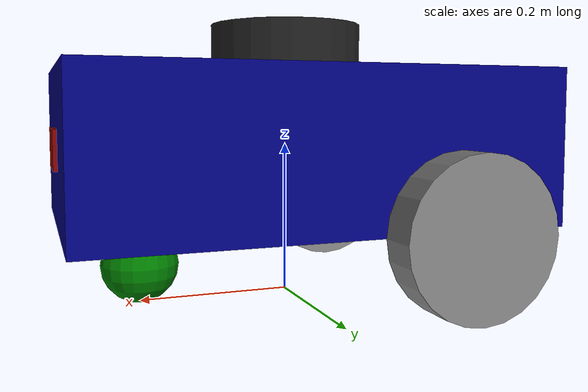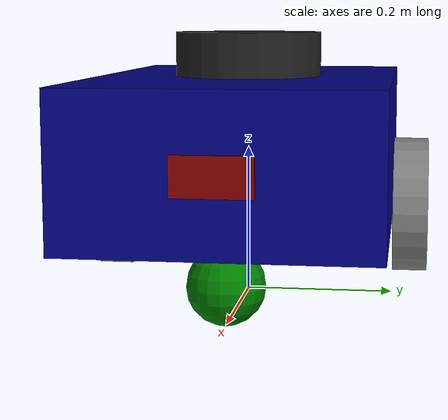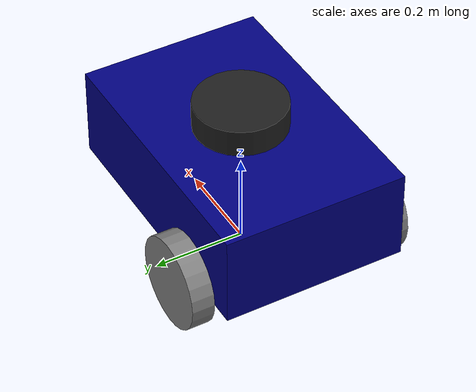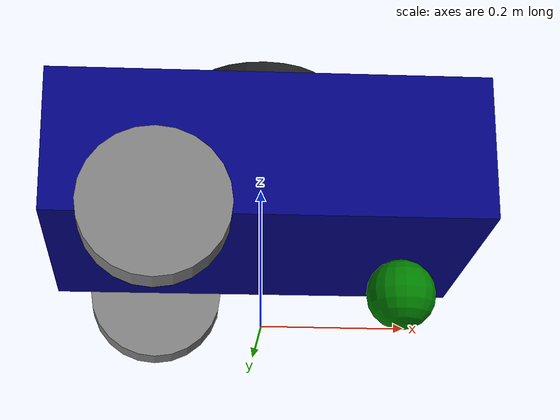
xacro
<?xml version="1.0"?>

<robot name="my_robot" xmlns:xacro="hettps://www.ros.org/wiki/xacro">

    <!-- Importar Cores (propriedades comuns) -->
    <xacro:include filename="$(find my_robot_description)/urdf/cm_properties.xacro" />

    <!-- Importar links e juntas -->
    <xacro:include filename="$(find my_robot_description)/urdf/robot_base.xacro" />
    <xacro:include filename="$(find my_robot_description)/urdf/lidar.xacro"/>
    <xacro:include filename="$(find my_robot_description)/urdf/camera.xacro"/>

    <!-- Importar o gazebo-->
    <xacro:include filename="$(find my_robot_description)/urdf/robot_base_gazebo.xacro" />

</robot>

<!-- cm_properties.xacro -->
<robot xmlns:xacro="http://www.ros.org/wiki/xacro" >

    <!-- Cores -->
    <material name="green">
        <color rgba="0.0 0.5 0.0 1"/>
    </material>
    <material name="blue">
        <color rgba="0.0 0.0 0.5 1"/>
    </material>
    <material name="red">
        <color rgba="0.5 0.0 0.0 1"/>
    </material>
    <material name="gray">
        <color rgba="0.5 0.5 0.5 1"/>
    </material>

    <xacro:macro name="box_inertia" params="m l w h o_xyz o_rpy" >
        <inertial>
            <origin xyz="${o_xyz}" rpy="${o_rpy}" />
            <mass value="${m}" />
            <inertia ixx="${(m/12) * (h*h + l*l)}" ixy="0" ixz="0"
                     iyy="${(m/12) * (w*w + l*l)}" iyz="0"
                     izz="${(m/12) * (h*h + w*w)}" />
        </inertial>
    </xacro:macro>

    <xacro:macro name="cylinder_inertia" params="m r l o_xyz o_rpy">
        <inertial>
            <mass value="${m}" />
            <origin xyz="${o_xyz}" rpy="${o_rpy}" />
            <inertia ixx="${(m/12) * (3*r*r + l*l)}" ixy="0" ixz="0"
                     iyy="${(m/12) * (3*r*r + l*l)}" iyz="0"
                     izz="${(m/2) * (r*r)}" />
        </inertial>
    </xacro:macro>

    <xacro:macro name="sphere_inertia" params="m r o_xyz o_rpy">
        <mass value="${m}" />
        <origin xyz="${o_xyz}" rpy="${o_rpy}" />
        <inertia ixx="${(2/5) * m*r*r}" ixy="0" ixz="0"
                     iyy="${(2/5) * m*r*r}" iyz="0"
                     izz="${(2/5) * m*r*r}" />
    </xacro:macro>

</robot>

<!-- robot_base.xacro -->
<robot xmlns:xacro="http://www.ros.org/wiki/xacro" >
    <!--  Variáveis  -->
    <xacro:property name="base_length" value="0.6" />
    <xacro:property name="base_width" value="0.4" />
    <xacro:property name="base_height" value="0.2" />
    <xacro:property name="wheel_radius" value="0.1" />
    <xacro:property name="wheel_length" value="0.05" />

    <link name="base_footprint"/>

    <link name="base_link">
        <visual>
            <geometry>
                <box size="${base_length} ${base_width} ${base_height}"/>
            </geometry>
            <origin xyz="0 0 ${base_height / 2.0}" rpy="0 0 0"/>
            <material name="blue"/>
        </visual>
        <collision>
            <geometry>
                <box size="${base_length} ${base_width} ${base_height}"/>
            </geometry>
            <origin xyz="0 0 ${base_height / 2.0}" rpy="0 0 0"/>
        </collision>
        <xacro:box_inertia m="5.0" l="${2*base_length}" w="${2*base_width}" h="${2*base_height}"
                           o_xyz="0 0 ${base_height / 2.0}" o_rpy="0 0 0" />

    </link>

    <joint name="base_joint" type="fixed">
        <parent link="base_footprint"/>
        <child link="base_link"/>
        <origin xyz="0 0 ${wheel_radius}"/>
    </joint>

    <xacro:macro name="wheel_link" params="prefix">
        <link name="${prefix}_wheel_link">
            <visual>
                <geometry>
                    <cylinder radius="${wheel_radius}" length="${wheel_length}"/>
                </geometry>
                <origin xyz="0.0 0.0 0.0" rpy="${pi / 2.0} 0.0 0.0"/>
                <material name="gray"/>
            </visual>
            <collision>
                <geometry>
                    <sphere radius="${wheel_radius}" />
                </geometry>
                <origin xyz="0.0 0.0 0.0" rpy="${pi / 2.0} 0.0 0.0"/>
            </collision>
            <xacro:cylinder_inertia m="1.0" r="${2*wheel_radius}" l="${2*wheel_length}" o_xyz="0.0 0.0 0.0" o_rpy="${pi / 2.0} 0.0 0.0" />
        </link>
    </xacro:macro>

    <xacro:wheel_link prefix="left" />

    <joint name="base_left_wheel_joint" type="continuous">
        <parent link="base_link"/>
        <child link="left_wheel_link"/>
        <origin xyz="${-base_length / 4.0} ${(base_width + wheel_length) / 2.0} 0.0" rpy="0 0 0"/>
        <axis xyz="0 1 0"/>
    </joint>

    <xacro:wheel_link prefix="right" />

    <joint name="base_right_wheel_joint" type="continuous">
        <parent link="base_link"/>
        <child link="right_wheel_link"/>
        <origin xyz="${-base_length / 4.0} ${- (base_width + wheel_length) / 2.0} 0" rpy="0 0 0"/>
        <axis xyz="0 1 0"/>
    </joint>

    <link name="caster_wheel_link">
        <visual>
            <geometry>
                <sphere radius="${wheel_radius / 2.0}"/>
            </geometry>
            <origin xyz="0.0 0.0 0.0" rpy="0.0 0.0 0.0"/>
            <material name="green"/>
        </visual>
        <collision>
            <geometry>
                <sphere radius="${wheel_radius / 2.0}"/>
            </geometry>
            <origin xyz="0.0 0.0 0.0" rpy="0.0 0.0 0.0"/>
        </collision>
        <xacro:sphere_inertia m="0.5" r="${2*wheel_radius / 2.0}" o_xyz="0.0 0.0 0.0" o_rpy="0.0 0.0 0.0" />
    </link>

    <joint name="base_caster_wheel_joint" type="fixed">
        <parent link="base_link"/>
        <child link="caster_wheel_link"/>
        <origin xyz="${base_length / 3.0} 0.0 ${- wheel_radius / 2.0}" rpy="0.0 0.0 0.0"/>
    </joint>
</robot>

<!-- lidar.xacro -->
<robot xmlns:xacro="http://www.ros.org/wiki/xacro">

    <link name="scan_link">
        <visual>
            <origin xyz="0 0 0.02" rpy="0 0 0"/>
            <geometry>
                <cylinder radius="0.1" length="0.06"/>
            </geometry>
            <material name="black" />
        </visual>
        <collision>
            <geometry>
                <cylinder radius="0.1" length="0.06"/>
            </geometry>
        </collision>
        <xacro:cylinder_inertia m="0.1" r="0.1" l="0.06" o_xyz="0 0 0.02" o_rpy="0 0 0" />
    </link>

    <joint name="base_scan_joint" type="fixed">
        <parent link="base_link"/>
        <child link="scan_link"/>
        <origin xyz="0 0 0.21" rpy="0 0 0"/>
    </joint>

    <gazebo reference="scan_link">
        <material>Gazebo/Black</material>

        <sensor name="scan" type="ray">
            <pose> 0 0 0 0 0 0 </pose>
            <visualize>false</visualize>
            <update_rate>10</update_rate>
            <ray>
                <scan>
                    <horizontal>
                        <samples>360</samples>
                        <min_angle>-3.14</min_angle>
                        <max_angle>3.14</max_angle>
                    </horizontal>
                </scan>
                <range>
                    <min>0.3</min>
                    <max>12</max>
                </range>
            </ray>
            <plugin name="laser_controller" filename="libgazebo_ros_ray_sensor.so">
                <ros>
                    <argument>~/out:=scan</argument>
                </ros>
                <output_type>sensor_msgs/LaserScan</output_type>
                <frame_name>scan_link</frame_name>
            </plugin>
        </sensor>
    </gazebo>

</robot>

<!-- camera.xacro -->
<robot xmlns:xacro="http://www.ros.org/wiki/xacro">

    <link name="camera_link">
        <visual>
            <origin xyz="0.0 0.0 0.0" rpy="0 0 0"/>
            <geometry>
                <box size="0.01 0.1 0.05"/>
            </geometry>
            <material name="red" />
        </visual>
        <collision>
            <geometry>
                <box size="0.01 0.1 0.05"/>
            </geometry>
        </collision>
        <xacro:box_inertia m="0.1" l="0.01" w="0.1" h="0.05" o_xyz="0 0 0" o_rpy="0 0 0" />
    </link>

    <link name="camera_link_fix_frame">

    </link>

    <joint name="base_camera_joint" type="fixed">
        <parent link="base_link"/>
        <child link="camera_link"/>
        <origin xyz="0.3 0.0 0.1" rpy="0 0 0"/>
    </joint>

    <joint name="base_camera_fix_frame_joint" type="fixed">
        <parent link="base_link"/>
        <child link="camera_link_fix_frame"/>
        <origin xyz="0.3 0.0 0.1" rpy="${-pi/2} 0 ${-pi/2}"/>
    </joint>

    <gazebo reference="camera_link">

        <sensor name="camera_sensor" type="camera">
            <pose>0 0 0 0 0 0</pose>
            <visualize>true</visualize>
            <update_rate>10.0</update_rate>
            <plugin name="camera" filename="libgazebo_ros_camera.so">
                <frame_name>camera_link</frame_name>
            </plugin>
        </sensor>

    </gazebo>

</robot>
